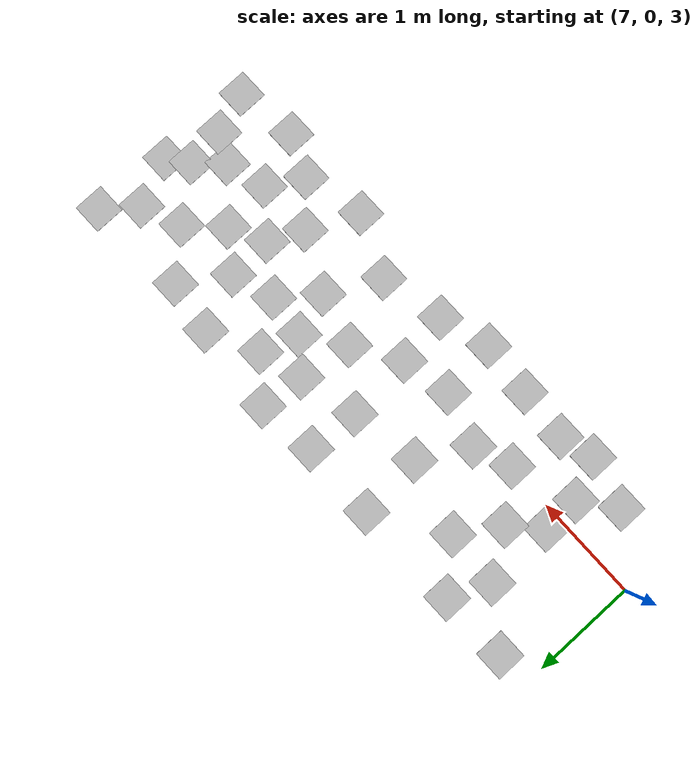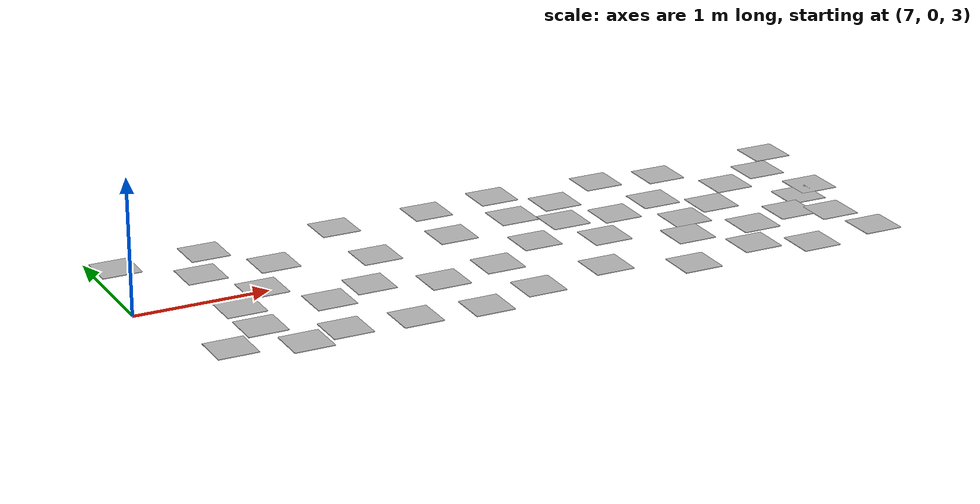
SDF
<sdf version="1.6">
 <world name="vrc_task_1">
  <model name="3_3">
   <static>1</static>
   <link name="link">
    <collision name="collision"><geometry><box><size>0.3 0.3 0.005</size></box></geometry></collision>
    <visual name="visual">
     <cast_shadows>0</cast_shadows>
     <geometry><box><size>0.3 0.3 0.005</size></box></geometry>
     <material>
      <script>
       <uri>model://3_3/materials/scripts</uri>
       <uri>model://3_3/materials/textures</uri>
       <name>3_3</name>
      </script>
     </material>
    </visual>
   </link>
   <pose>11.428 0.651078 2.85801 0 -0 0</pose>
  </model>
  <model name="3_3_clone">
   <static>1</static>
   <link name="link">
    <collision name="collision"><geometry><box><size>0.3 0.3 0.005</size></box></geometry></collision>
    <visual name="visual">
     <cast_shadows>0</cast_shadows>
     <geometry><box><size>0.3 0.3 0.005</size></box></geometry>
     <material>
      <script>
       <uri>model://3_3/materials/scripts</uri>
       <uri>model://3_3/materials/textures</uri>
       <name>3_3</name>
      </script>
     </material>
    </visual>
   </link>
   <pose>11.2903 -0.111869 2.8699 0 -0 0</pose>
  </model>
  <model name="3_3_clone_8_clone_13">
   <static>1</static>
   <link name="link">
    <collision name="collision"><geometry><box><size>0.3 0.3 0.005</size></box></geometry></collision>
    <visual name="visual">
     <cast_shadows>0</cast_shadows>
     <geometry><box><size>0.3 0.3 0.005</size></box></geometry>
     <material>
      <script>
       <uri>model://3_3/materials/scripts</uri>
       <uri>model://3_3/materials/textures</uri>
       <name>3_3</name>
      </script>
     </material>
    </visual>
   </link>
   <pose>7.8285 0.126175 2.85801 0 -0 0</pose>
  </model>
  <model name="3_3_clone_8_clone_14">
   <static>1</static>
   <link name="link">
    <collision name="collision"><geometry><box><size>0.3 0.3 0.005</size></box></geometry></collision>
    <visual name="visual">
     <cast_shadows>0</cast_shadows>
     <geometry><box><size>0.3 0.3 0.005</size></box></geometry>
     <material>
      <script>
       <uri>model://3_3/materials/scripts</uri>
       <uri>model://3_3/materials/textures</uri>
       <name>3_3</name>
      </script>
     </material>
    </visual>
   </link>
   <pose>7.83251 -0.241854 2.85801 0 -0 0</pose>
  </model>
  <model name="3_3_clone_8_clone_15">
   <static>1</static>
   <link name="link">
    <collision name="collision"><geometry><box><size>0.3 0.3 0.005</size></box></geometry></collision>
    <visual name="visual">
     <cast_shadows>0</cast_shadows>
     <geometry><box><size>0.3 0.3 0.005</size></box></geometry>
     <material>
      <script>
       <uri>model://3_3/materials/scripts</uri>
       <uri>model://3_3/materials/textures</uri>
       <name>3_3</name>
      </script>
     </material>
    </visual>
   </link>
   <pose>7.50839 -0.495585 2.85801 0 -0 0</pose>
  </model>
  <model name="3_3_clone_8_clone_16">
   <static>1</static>
   <link name="link">
    <collision name="collision"><geometry><box><size>0.3 0.3 0.005</size></box></geometry></collision>
    <visual name="visual">
     <cast_shadows>0</cast_shadows>
     <geometry><box><size>0.3 0.3 0.005</size></box></geometry>
     <material>
      <script>
       <uri>model://3_3/materials/scripts</uri>
       <uri>model://3_3/materials/textures</uri>
       <name>3_3</name>
      </script>
     </material>
    </visual>
   </link>
   <pose>7.80888 0.806706 2.85801 0 -0 0</pose>
  </model>
  <model name="3_3_clone_8_clone_17">
   <static>1</static>
   <link name="link">
    <collision name="collision"><geometry><box><size>0.3 0.3 0.005</size></box></geometry></collision>
    <visual name="visual">
     <cast_shadows>0</cast_shadows>
     <geometry><box><size>0.3 0.3 0.005</size></box></geometry>
     <material>
      <script>
       <uri>model://3_3/materials/scripts</uri>
       <uri>model://3_3/materials/textures</uri>
       <name>3_3</name>
      </script>
     </material>
    </visual>
   </link>
   <pose>8.35792 0.775109 2.85801 0 -0 0</pose>
  </model>
  <model name="3_3_clone_8_clone_18">
   <static>1</static>
   <link name="link">
    <collision name="collision"><geometry><box><size>0.3 0.3 0.005</size></box></geometry></collision>
    <visual name="visual">
     <cast_shadows>0</cast_shadows>
     <geometry><box><size>0.3 0.3 0.005</size></box></geometry>
     <material>
      <script>
       <uri>model://3_3/materials/scripts</uri>
       <uri>model://3_3/materials/textures</uri>
       <name>3_3</name>
      </script>
     </material>
    </visual>
   </link>
   <pose>8.44077 -0.031196 2.85801 0 -0 0</pose>
  </model>
  <model name="3_3_clone_8_clone_19">
   <static>1</static>
   <link name="link">
    <collision name="collision"><geometry><box><size>0.3 0.3 0.005</size></box></geometry></collision>
    <visual name="visual">
     <cast_shadows>0</cast_shadows>
     <geometry><box><size>0.3 0.3 0.005</size></box></geometry>
     <material>
      <script>
       <uri>model://3_3/materials/scripts</uri>
       <uri>model://3_3/materials/textures</uri>
       <name>3_3</name>
      </script>
     </material>
    </visual>
   </link>
   <pose>8.33878 -0.534123 2.85801 0 -0 0</pose>
  </model>
  <model name="3_3_clone_8_clone_20">
   <static>1</static>
   <link name="link">
    <collision name="collision"><geometry><box><size>0.3 0.3 0.005</size></box></geometry></collision>
    <visual name="visual">
     <cast_shadows>0</cast_shadows>
     <geometry><box><size>0.3 0.3 0.005</size></box></geometry>
     <material>
      <script>
       <uri>model://3_3/materials/scripts</uri>
       <uri>model://3_3/materials/textures</uri>
       <name>3_3</name>
      </script>
     </material>
    </visual>
   </link>
   <pose>9.31391 -0.061015 2.85801 0 -0 0</pose>
  </model>
  <model name="3_3_clone_8_clone_21">
   <static>1</static>
   <link name="link">
    <collision name="collision"><geometry><box><size>0.3 0.3 0.005</size></box></geometry></collision>
    <visual name="visual">
     <cast_shadows>0</cast_shadows>
     <geometry><box><size>0.3 0.3 0.005</size></box></geometry>
     <material>
      <script>
       <uri>model://3_3/materials/scripts</uri>
       <uri>model://3_3/materials/textures</uri>
       <name>3_3</name>
      </script>
     </material>
    </visual>
   </link>
   <pose>8.84979 -0.57545 2.85801 0 -0 0</pose>
  </model>
  <model name="3_3_clone_8_clone_22">
   <static>1</static>
   <link name="link">
    <collision name="collision"><geometry><box><size>0.3 0.3 0.005</size></box></geometry></collision>
    <visual name="visual">
     <cast_shadows>0</cast_shadows>
     <geometry><box><size>0.3 0.3 0.005</size></box></geometry>
     <material>
      <script>
       <uri>model://3_3/materials/scripts</uri>
       <uri>model://3_3/materials/textures</uri>
       <name>3_3</name>
      </script>
     </material>
    </visual>
   </link>
   <pose>9.37668 -0.619125 2.85801 0 -0 0</pose>
  </model>
  <model name="3_3_clone_8_clone_23">
   <static>1</static>
   <link name="link">
    <collision name="collision"><geometry><box><size>0.3 0.3 0.005</size></box></geometry></collision>
    <visual name="visual">
     <cast_shadows>0</cast_shadows>
     <geometry><box><size>0.3 0.3 0.005</size></box></geometry>
     <material>
      <script>
       <uri>model://3_3/materials/scripts</uri>
       <uri>model://3_3/materials/textures</uri>
       <name>3_3</name>
      </script>
     </material>
    </visual>
   </link>
   <pose>9.07403 0.578028 2.85801 0 -0 0</pose>
  </model>
  <model name="3_3_clone_8_clone_24">
   <static>1</static>
   <link name="link">
    <collision name="collision"><geometry><box><size>0.3 0.3 0.005</size></box></geometry></collision>
    <visual name="visual">
     <cast_shadows>0</cast_shadows>
     <geometry><box><size>0.3 0.3 0.005</size></box></geometry>
     <material>
      <script>
       <uri>model://3_3/materials/scripts</uri>
       <uri>model://3_3/materials/textures</uri>
       <name>3_3</name>
      </script>
     </material>
    </visual>
   </link>
   <pose>8.80902 0.102246 2.85801 0 -0 0</pose>
  </model>
  <model name="3_3_clone_8_clone_25">
   <static>1</static>
   <link name="link">
    <collision name="collision"><geometry><box><size>0.3 0.3 0.005</size></box></geometry></collision>
    <visual name="visual">
     <cast_shadows>0</cast_shadows>
     <geometry><box><size>0.3 0.3 0.005</size></box></geometry>
     <material>
      <script>
       <uri>model://3_3/materials/scripts</uri>
       <uri>model://3_3/materials/textures</uri>
       <name>3_3</name>
      </script>
     </material>
    </visual>
   </link>
   <pose>9.02544 1.20825 2.85801 0 -0 0</pose>
  </model>
  <model name="3_3_clone_8_clone_26">
   <static>1</static>
   <link name="link">
    <collision name="collision"><geometry><box><size>0.3 0.3 0.005</size></box></geometry></collision>
    <visual name="visual">
     <cast_shadows>0</cast_shadows>
     <geometry><box><size>0.3 0.3 0.005</size></box></geometry>
     <material>
      <script>
       <uri>model://3_3/materials/scripts</uri>
       <uri>model://3_3/materials/textures</uri>
       <name>3_3</name>
      </script>
     </material>
    </visual>
   </link>
   <pose>9.74291 0.690926 2.85801 0 -0 0</pose>
  </model>
  <model name="3_3_clone_8_clone_27">
   <static>1</static>
   <link name="link">
    <collision name="collision"><geometry><box><size>0.3 0.3 0.005</size></box></geometry></collision>
    <visual name="visual">
     <cast_shadows>0</cast_shadows>
     <geometry><box><size>0.3 0.3 0.005</size></box></geometry>
     <material>
      <script>
       <uri>model://3_3/materials/scripts</uri>
       <uri>model://3_3/materials/textures</uri>
       <name>3_3</name>
      </script>
     </material>
    </visual>
   </link>
   <pose>9.79369 0.034407 2.85801 0 -0 0</pose>
  </model>
  <model name="3_3_clone_8_clone_28">
   <static>1</static>
   <link name="link">
    <collision name="collision"><geometry><box><size>0.3 0.3 0.005</size></box></geometry></collision>
    <visual name="visual">
     <cast_shadows>0</cast_shadows>
     <geometry><box><size>0.3 0.3 0.005</size></box></geometry>
     <material>
      <script>
       <uri>model://3_3/materials/scripts</uri>
       <uri>model://3_3/materials/textures</uri>
       <name>3_3</name>
      </script>
     </material>
    </visual>
   </link>
   <pose>9.8603 -0.472512 2.85801 0 -0 0</pose>
  </model>
  <model name="3_3_clone_8_clone_29">
   <static>1</static>
   <link name="link">
    <collision name="collision"><geometry><box><size>0.3 0.3 0.005</size></box></geometry></collision>
    <visual name="visual">
     <cast_shadows>0</cast_shadows>
     <geometry><box><size>0.3 0.3 0.005</size></box></geometry>
     <material>
      <script>
       <uri>model://3_3/materials/scripts</uri>
       <uri>model://3_3/materials/textures</uri>
       <name>3_3</name>
      </script>
     </material>
    </visual>
   </link>
   <pose>10.4773 -0.339814 2.85801 0 -0 0</pose>
  </model>
  <model name="3_3_clone_8_clone_30">
   <static>1</static>
   <link name="link">
    <collision name="collision"><geometry><box><size>0.3 0.3 0.005</size></box></geometry></collision>
    <visual name="visual">
     <cast_shadows>0</cast_shadows>
     <geometry><box><size>0.3 0.3 0.005</size></box></geometry>
     <material>
      <script>
       <uri>model://3_3/materials/scripts</uri>
       <uri>model://3_3/materials/textures</uri>
       <name>3_3</name>
      </script>
     </material>
    </visual>
   </link>
   <pose>10.2353 0.305572 2.85801 0 -0 0</pose>
  </model>
  <model name="3_3_clone_8_clone_31">
   <static>1</static>
   <link name="link">
    <collision name="collision"><geometry><box><size>0.3 0.3 0.005</size></box></geometry></collision>
    <visual name="visual">
     <cast_shadows>0</cast_shadows>
     <geometry><box><size>0.3 0.3 0.005</size></box></geometry>
     <material>
      <script>
       <uri>model://3_3/materials/scripts</uri>
       <uri>model://3_3/materials/textures</uri>
       <name>3_3</name>
      </script>
     </material>
    </visual>
   </link>
   <pose>10.6173 0.577032 2.85801 0 -0 0</pose>
  </model>
  <model name="3_3_clone_8_clone_32">
   <static>1</static>
   <link name="link">
    <collision name="collision"><geometry><box><size>0.3 0.3 0.005</size></box></geometry></collision>
    <visual name="visual">
     <cast_shadows>0</cast_shadows>
     <geometry><box><size>0.3 0.3 0.005</size></box></geometry>
     <material>
      <script>
       <uri>model://3_3/materials/scripts</uri>
       <uri>model://3_3/materials/textures</uri>
       <name>3_3</name>
      </script>
     </material>
    </visual>
   </link>
   <pose>10.3125 0.822479 2.85801 0 -0 0</pose>
  </model>
  <model name="3_3_clone_8_clone_33">
   <static>1</static>
   <link name="link">
    <collision name="collision"><geometry><box><size>0.3 0.3 0.005</size></box></geometry></collision>
    <visual name="visual">
     <cast_shadows>0</cast_shadows>
     <geometry><box><size>0.3 0.3 0.005</size></box></geometry>
     <material>
      <script>
       <uri>model://3_3/materials/scripts</uri>
       <uri>model://3_3/materials/textures</uri>
       <name>3_3</name>
      </script>
     </material>
    </visual>
   </link>
   <pose>10.7357 0.940685 2.85801 0 -0 0</pose>
  </model>
  <model name="3_3_clone_8_clone_34">
   <static>1</static>
   <link name="link">
    <collision name="collision"><geometry><box><size>0.3 0.3 0.005</size></box></geometry></collision>
    <visual name="visual">
     <cast_shadows>0</cast_shadows>
     <geometry><box><size>0.3 0.3 0.005</size></box></geometry>
     <material>
      <script>
       <uri>model://3_3/materials/scripts</uri>
       <uri>model://3_3/materials/textures</uri>
       <name>3_3</name>
      </script>
     </material>
    </visual>
   </link>
   <pose>8.10149 0.374588 2.85801 0 -0 0</pose>
  </model>
  <model name="3_3_clone_8_clone_35">
   <static>1</static>
   <link name="link">
    <collision name="collision"><geometry><box><size>0.3 0.3 0.005</size></box></geometry></collision>
    <visual name="visual">
     <cast_shadows>0</cast_shadows>
     <geometry><box><size>0.3 0.3 0.005</size></box></geometry>
     <material>
      <script>
       <uri>model://3_3/materials/scripts</uri>
       <uri>model://3_3/materials/textures</uri>
       <name>3_3</name>
      </script>
     </material>
    </visual>
   </link>
   <pose>7.98479 1.19333 2.85801 0 -0 0</pose>
  </model>
  <model name="3_3_clone_8_clone_37">
   <static>1</static>
   <link name="link">
    <collision name="collision"><geometry><box><size>0.3 0.3 0.005</size></box></geometry></collision>
    <visual name="visual">
     <cast_shadows>0</cast_shadows>
     <geometry><box><size>0.3 0.3 0.005</size></box></geometry>
     <material>
      <script>
       <uri>model://3_3/materials/scripts</uri>
       <uri>model://3_3/materials/textures</uri>
       <name>3_3</name>
      </script>
     </material>
    </visual>
   </link>
   <pose>7.30223 1.1872 2.85801 0 -0 0</pose>
  </model>
  <model name="3_3_clone_8_clone_38">
   <static>1</static>
   <link name="link">
    <collision name="collision"><geometry><box><size>0.3 0.3 0.005</size></box></geometry></collision>
    <visual name="visual">
     <cast_shadows>0</cast_shadows>
     <geometry><box><size>0.3 0.3 0.005</size></box></geometry>
     <material>
      <script>
       <uri>model://3_3/materials/scripts</uri>
       <uri>model://3_3/materials/textures</uri>
       <name>3_3</name>
      </script>
     </material>
    </visual>
   </link>
   <pose>11.0235 0.52166 2.85801 0 -0 0</pose>
  </model>
  <model name="3_3_clone_8_clone_39">
   <static>1</static>
   <link name="link">
    <collision name="collision"><geometry><box><size>0.3 0.3 0.005</size></box></geometry></collision>
    <visual name="visual">
     <cast_shadows>0</cast_shadows>
     <geometry><box><size>0.3 0.3 0.005</size></box></geometry>
     <material>
      <script>
       <uri>model://3_3/materials/scripts</uri>
       <uri>model://3_3/materials/textures</uri>
       <name>3_3</name>
      </script>
     </material>
    </visual>
   </link>
   <pose>10.7434 0.165033 2.85801 0 -0 0</pose>
  </model>
  <model name="3_3_clone_8_clone_40">
   <static>1</static>
   <link name="link">
    <collision name="collision"><geometry><box><size>0.3 0.3 0.005</size></box></geometry></collision>
    <visual name="visual">
     <cast_shadows>0</cast_shadows>
     <geometry><box><size>0.3 0.3 0.005</size></box></geometry>
     <material>
      <script>
       <uri>model://3_3/materials/scripts</uri>
       <uri>model://3_3/materials/textures</uri>
       <name>3_3</name>
      </script>
     </material>
    </visual>
   </link>
   <pose>11.0615 -0.592963 2.85801 0 -0 0</pose>
  </model>
  <model name="3_3_clone_8_clone_41">
   <static>1</static>
   <link name="link">
    <collision name="collision"><geometry><box><size>0.3 0.3 0.005</size></box></geometry></collision>
    <visual name="visual">
     <cast_shadows>0</cast_shadows>
     <geometry><box><size>0.3 0.3 0.005</size></box></geometry>
     <material>
      <script>
       <uri>model://3_3/materials/scripts</uri>
       <uri>model://3_3/materials/textures</uri>
       <name>3_3</name>
      </script>
     </material>
    </visual>
   </link>
   <pose>11.6498 -0.450056 2.85801 0 -0 0</pose>
  </model>
  <model name="3_3_clone_8_clone_42">
   <static>1</static>
   <link name="link">
    <collision name="collision"><geometry><box><size>0.3 0.3 0.005</size></box></geometry></collision>
    <visual name="visual">
     <cast_shadows>0</cast_shadows>
     <geometry><box><size>0.3 0.3 0.005</size></box></geometry>
     <material>
      <script>
       <uri>model://3_3/materials/scripts</uri>
       <uri>model://3_3/materials/textures</uri>
       <name>3_3</name>
      </script>
     </material>
    </visual>
   </link>
   <pose>11.8483 -0.112528 2.85801 0 -0 0</pose>
  </model>
  <model name="3_3_clone_8_clone_43">
   <static>1</static>
   <link name="link">
    <collision name="collision"><geometry><box><size>0.3 0.3 0.005</size></box></geometry></collision>
    <visual name="visual">
     <cast_shadows>0</cast_shadows>
     <geometry><box><size>0.3 0.3 0.005</size></box></geometry>
     <material>
      <script>
       <uri>model://3_3/materials/scripts</uri>
       <uri>model://3_3/materials/textures</uri>
       <name>3_3</name>
      </script>
     </material>
    </visual>
   </link>
   <pose>11.7877 0.387149 2.85801 0 -0 0</pose>
  </model>
  <model name="3_3_clone_8_clone_44">
   <static>1</static>
   <link name="link">
    <collision name="collision"><geometry><box><size>0.3 0.3 0.005</size></box></geometry></collision>
    <visual name="visual">
     <cast_shadows>0</cast_shadows>
     <geometry><box><size>0.3 0.3 0.005</size></box></geometry>
     <material>
      <script>
       <uri>model://3_3/materials/scripts</uri>
       <uri>model://3_3/materials/textures</uri>
       <name>3_3</name>
      </script>
     </material>
    </visual>
   </link>
   <pose>11.4513 0.213299 2.85801 0 -0 0</pose>
  </model>
  <model name="3_3_clone_8_clone_45">
   <static>1</static>
   <link name="link">
    <collision name="collision"><geometry><box><size>0.3 0.3 0.005</size></box></geometry></collision>
    <visual name="visual">
     <cast_shadows>0</cast_shadows>
     <geometry><box><size>0.3 0.3 0.005</size></box></geometry>
     <material>
      <script>
       <uri>model://3_3/materials/scripts</uri>
       <uri>model://3_3/materials/textures</uri>
       <name>3_3</name>
      </script>
     </material>
    </visual>
   </link>
   <pose>11.2173 1.17721 2.85801 0 -0 0</pose>
  </model>
  <model name="3_3_clone_8_clone_46">
   <static>1</static>
   <link name="link">
    <collision name="collision"><geometry><box><size>0.3 0.3 0.005</size></box></geometry></collision>
    <visual name="visual">
     <cast_shadows>0</cast_shadows>
     <geometry><box><size>0.3 0.3 0.005</size></box></geometry>
     <material>
      <script>
       <uri>model://3_3/materials/scripts</uri>
       <uri>model://3_3/materials/textures</uri>
       <name>3_3</name>
      </script>
     </material>
    </visual>
   </link>
   <pose>9.7771 1.19363 2.85801 0 -0 0</pose>
  </model>
  <model name="3_3_clone_8_clone_47">
   <static>1</static>
   <link name="link">
    <collision name="collision"><geometry><box><size>0.3 0.3 0.005</size></box></geometry></collision>
    <visual name="visual">
     <cast_shadows>0</cast_shadows>
     <geometry><box><size>0.3 0.3 0.005</size></box></geometry>
     <material>
      <script>
       <uri>model://3_3/materials/scripts</uri>
       <uri>model://3_3/materials/textures</uri>
       <name>3_3</name>
      </script>
     </material>
    </visual>
   </link>
   <pose>10.3563 1.25284 2.85801 0 -0 0</pose>
  </model>
  <model name="3_3_clone_8_clone_48">
   <static>1</static>
   <link name="link">
    <collision name="collision"><geometry><box><size>0.3 0.3 0.005</size></box></geometry></collision>
    <visual name="visual">
     <cast_shadows>0</cast_shadows>
     <geometry><box><size>0.3 0.3 0.005</size></box></geometry>
     <material>
      <script>
       <uri>model://3_3/materials/scripts</uri>
       <uri>model://3_3/materials/textures</uri>
       <name>3_3</name>
      </script>
     </material>
    </visual>
   </link>
   <pose>11.7228 1.09532 2.85801 0 -0 0</pose>
  </model>
  <model name="3_3_clone_8_clone_49">
   <static>1</static>
   <link name="link">
    <collision name="collision"><geometry><box><size>0.3 0.3 0.005</size></box></geometry></collision>
    <visual name="visual">
     <cast_shadows>0</cast_shadows>
     <geometry><box><size>0.3 0.3 0.005</size></box></geometry>
     <material>
      <script>
       <uri>model://3_3/materials/scripts</uri>
       <uri>model://3_3/materials/textures</uri>
       <name>3_3</name>
      </script>
     </material>
    </visual>
   </link>
   <pose>8.00865 -0.62378 2.85801 0 -0 0</pose>
  </model>
  <model name="3_3_clone_8_clone_50">
   <static>1</static>
   <link name="link">
    <collision name="collision"><geometry><box><size>0.3 0.3 0.005</size></box></geometry></collision>
    <visual name="visual">
     <cast_shadows>0</cast_shadows>
     <geometry><box><size>0.3 0.3 0.005</size></box></geometry>
     <material>
      <script>
       <uri>model://3_3/materials/scripts</uri>
       <uri>model://3_3/materials/textures</uri>
       <name>3_3</name>
      </script>
     </material>
    </visual>
   </link>
   <pose>12.0464 -0.623631 2.85801 0 -0 0</pose>
  </model>
  <model name="3_3_clone_8_clone_51">
   <static>1</static>
   <link name="link">
    <collision name="collision"><geometry><box><size>0.3 0.3 0.005</size></box></geometry></collision>
    <visual name="visual">
     <cast_shadows>0</cast_shadows>
     <geometry><box><size>0.3 0.3 0.005</size></box></geometry>
     <material>
      <script>
       <uri>model://3_3/materials/scripts</uri>
       <uri>model://3_3/materials/textures</uri>
       <name>3_3</name>
      </script>
     </material>
    </visual>
   </link>
   <pose>12.6353 -0.53781 2.85801 0 -0 0</pose>
  </model>
  <model name="3_3_clone_8_clone_52">
   <static>1</static>
   <link name="link">
    <collision name="collision"><geometry><box><size>0.3 0.3 0.005</size></box></geometry></collision>
    <visual name="visual">
     <cast_shadows>0</cast_shadows>
     <geometry><box><size>0.3 0.3 0.005</size></box></geometry>
     <material>
      <script>
       <uri>model://3_3/materials/scripts</uri>
       <uri>model://3_3/materials/textures</uri>
       <name>3_3</name>
      </script>
     </material>
    </visual>
   </link>
   <pose>12.2353 -0.003715 2.85801 0 -0 0</pose>
  </model>
  <model name="3_3_clone_8_clone_53">
   <static>1</static>
   <link name="link">
    <collision name="collision"><geometry><box><size>0.3 0.3 0.005</size></box></geometry></collision>
    <visual name="visual">
     <cast_shadows>0</cast_shadows>
     <geometry><box><size>0.3 0.3 0.005</size></box></geometry>
     <material>
      <script>
       <uri>model://3_3/materials/scripts</uri>
       <uri>model://3_3/materials/textures</uri>
       <name>3_3</name>
      </script>
     </material>
    </visual>
   </link>
   <pose>12.4654 0.235078 2.85801 0 -0 0</pose>
  </model>
  <model name="3_3_clone_8_clone_54">
   <static>1</static>
   <link name="link">
    <collision name="collision"><geometry><box><size>0.3 0.3 0.005</size></box></geometry></collision>
    <visual name="visual">
     <cast_shadows>0</cast_shadows>
     <geometry><box><size>0.3 0.3 0.005</size></box></geometry>
     <material>
      <script>
       <uri>model://3_3/materials/scripts</uri>
       <uri>model://3_3/materials/textures</uri>
       <name>3_3</name>
      </script>
     </material>
    </visual>
   </link>
   <pose>12.6591 0.387287 2.85801 0 -0 0</pose>
  </model>
  <model name="3_3_clone_8_clone_55">
   <static>1</static>
   <link name="link">
    <collision name="collision"><geometry><box><size>0.3 0.3 0.005</size></box></geometry></collision>
    <visual name="visual">
     <cast_shadows>0</cast_shadows>
     <geometry><box><size>0.3 0.3 0.005</size></box></geometry>
     <material>
      <script>
       <uri>model://3_3/materials/scripts</uri>
       <uri>model://3_3/materials/textures</uri>
       <name>3_3</name>
      </script>
     </material>
    </visual>
   </link>
   <pose>12.5083 -0.14435 2.85801 0 -0 0</pose>
  </model>
  <model name="3_3_clone_8_clone_56">
   <static>1</static>
   <link name="link">
    <collision name="collision"><geometry><box><size>0.3 0.3 0.005</size></box></geometry></collision>
    <visual name="visual">
     <cast_shadows>0</cast_shadows>
     <geometry><box><size>0.3 0.3 0.005</size></box></geometry>
     <material>
      <script>
       <uri>model://3_3/materials/scripts</uri>
       <uri>model://3_3/materials/textures</uri>
       <name>3_3</name>
      </script>
     </material>
    </visual>
   </link>
   <pose>12.0915 0.691236 2.85801 0 -0 0</pose>
  </model>
  <model name="3_3_clone_8_clone_57">
   <static>1</static>
   <link name="link">
    <collision name="collision"><geometry><box><size>0.3 0.3 0.005</size></box></geometry></collision>
    <visual name="visual">
     <cast_shadows>0</cast_shadows>
     <geometry><box><size>0.3 0.3 0.005</size></box></geometry>
     <material>
      <script>
       <uri>model://3_3/materials/scripts</uri>
       <uri>model://3_3/materials/textures</uri>
       <name>3_3</name>
      </script>
     </material>
    </visual>
   </link>
   <pose>12.4714 0.841731 2.85801 0 -0 0</pose>
  </model>
  <model name="3_3_clone_8_clone_58">
   <static>1</static>
   <link name="link">
    <collision name="collision"><geometry><box><size>0.3 0.3 0.005</size></box></geometry></collision>
    <visual name="visual">
     <cast_shadows>0</cast_shadows>
     <geometry><box><size>0.3 0.3 0.005</size></box></geometry>
     <material>
      <script>
       <uri>model://3_3/materials/scripts</uri>
       <uri>model://3_3/materials/textures</uri>
       <name>3_3</name>
      </script>
     </material>
    </visual>
   </link>
   <pose>12.7156 1.15021 2.85801 0 -0 0</pose>
  </model>
 </world>
</sdf>
